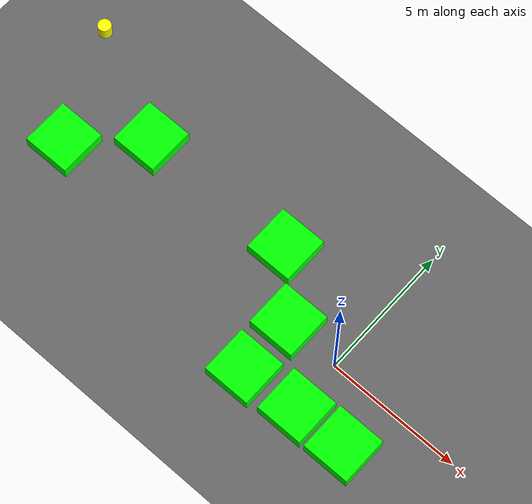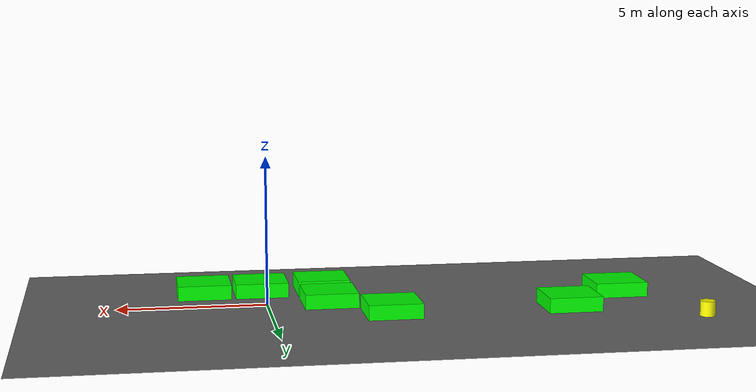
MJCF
<mujoco model="randommix_036_lvl0_standard_obs7_d2mid_seed1089">
    <compiler angle="degree" coordinate="local" inertiafromgeom="true"/>
    <option integrator="RK4" timestep="0.01"/>

    <asset>
        <texture builtin="gradient" height="100" rgb1="0.6 0.8 1" rgb2="0 0 0" type="skybox" width="100"/>
        <texture name="floor_texture" type="2d" builtin="checker" width="100" height="100" rgb1="0 0 0" rgb2="0.8 0.8 0.8"/>
        <material name="MatPlane" reflectance="0.5" shininess="1" specular="1" texrepeat="10 10" texture="floor_texture"/>
    </asset>

    <!-- Excluding the contact between the agent and the goal, and the agent and the floor -->
    <contact>
        <exclude body1="agent" body2="goal"/>
        <exclude body1 = "agent" body2 = "floor"/>
    </contact>

    <extension>
        <plugin plugin = "mujoco.pid">
            <instance name = "pid1">
                <config key="kp" value="2"/>
                <config key="ki" value="0"/>
                <config key="kd" value="55"/>
            </instance>
        </plugin>
    </extension>

    <worldbody>
        <light cutoff="100" diffuse="1 1 1" dir="-0 0 -1.3" directional="true" exponent="1" pos="0 0 1.3" specular=".1 .1 .1"/>
        <body name="floor" pos="0 0 0">
            <geom name="floor_geom" type="plane" size="20 20 0.1" material="MatPlane"/>
        </body>

                <body name="goal" pos="0.0000 0.0000 0">
            <geom name="goal_geom" type="plane" size="0.5 0.5 1" pos="0 0 0" rgba="1 0 0 1"/>
        </body>

                <body name="agent" pos="-14.0000 4.0000 0.250">
            <joint name="j1" type="slide" axis ="1 0 0 "/>
            <joint name="j2" type="slide" axis ="0 1 0 "/>
            <geom name="agent_geom" type="cylinder" size="0.25 0.25 0.250" rgba="1 1 0 1"/>
        </body>

        <body name="obstacle1" pos="-9.9182 1.9676 0.250">  <geom name="obstacle1_geom" type="box" size="0.9000 0.9000 0.250" rgba="0 1 0 1"/></body>
        <body name="obstacle2" pos="-3.9071 2.0249 0.250">  <geom name="obstacle2_geom" type="box" size="0.9000 0.9000 0.250" rgba="0 1 0 1"/></body>
        <body name="obstacle3" pos="-12.0927 -0.0349 0.250">  <geom name="obstacle3_geom" type="box" size="0.9000 0.9000 0.250" rgba="0 1 0 1"/></body>
        <body name="obstacle4" pos="-2.0782 0.0865 0.250">  <geom name="obstacle4_geom" type="box" size="0.9000 0.9000 0.250" rgba="0 1 0 1"/></body>
        <body name="obstacle5" pos="-2.0766 -2.0852 0.250">  <geom name="obstacle5_geom" type="box" size="0.9000 0.9000 0.250" rgba="0 1 0 1"/></body>
        <body name="obstacle6" pos="0.0716 -1.9493 0.250">  <geom name="obstacle6_geom" type="box" size="0.9000 0.9000 0.250" rgba="0 1 0 1"/></body>
        <body name="obstacle7" pos="2.0263 -1.9255 0.250">  <geom name="obstacle7_geom" type="box" size="0.9000 0.9000 0.250" rgba="0 1 0 1"/></body>

    </worldbody>

    <sensor>
<!-- SENSORS -->

        <distance name="dist1" geom1="agent_geom" geom2="obstacle1_geom" cutoff="1.5"/>
        <distance name="dist2" geom1="agent_geom" geom2="obstacle2_geom" cutoff="1.5"/>
        <distance name="dist3" geom1="agent_geom" geom2="obstacle3_geom" cutoff="1.5"/>
        <distance name="dist4" geom1="agent_geom" geom2="obstacle4_geom" cutoff="1.5"/>
        <distance name="dist5" geom1="agent_geom" geom2="obstacle5_geom" cutoff="1.5"/>
        <distance name="dist6" geom1="agent_geom" geom2="obstacle6_geom" cutoff="1.5"/>
        <distance name="dist7" geom1="agent_geom" geom2="obstacle7_geom" cutoff="1.5"/>
</sensor>

    <actuator>
        <plugin joint="j1" plugin="mujoco.pid" instance="pid1" />
        <plugin joint="j2" plugin="mujoco.pid" instance="pid1"/>
    </actuator>
</mujoco>
